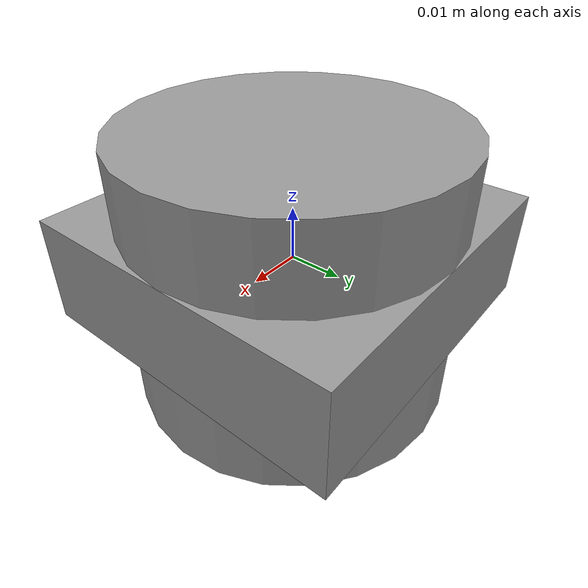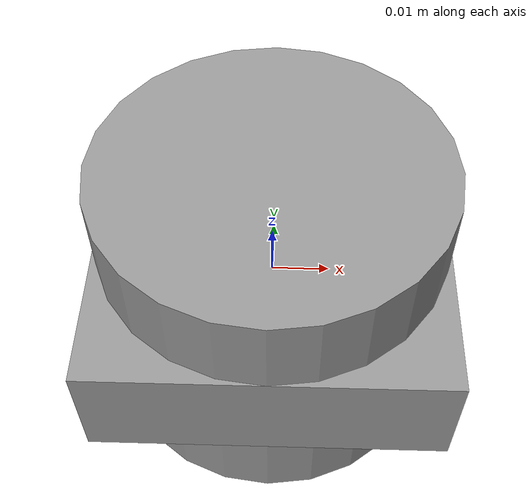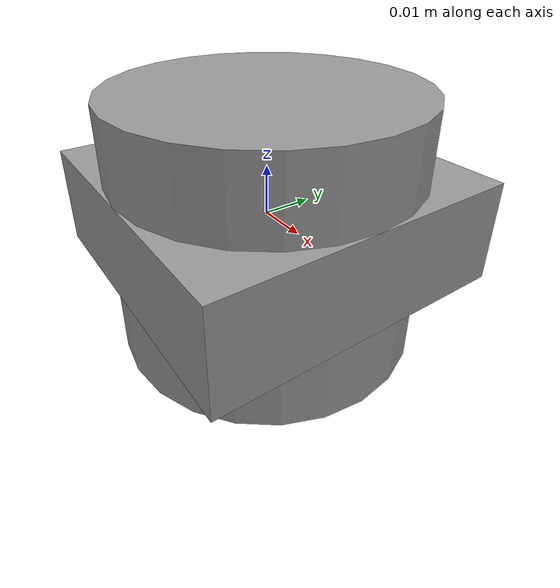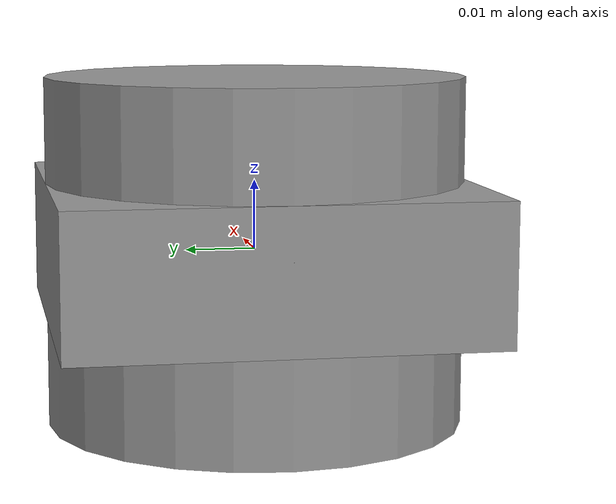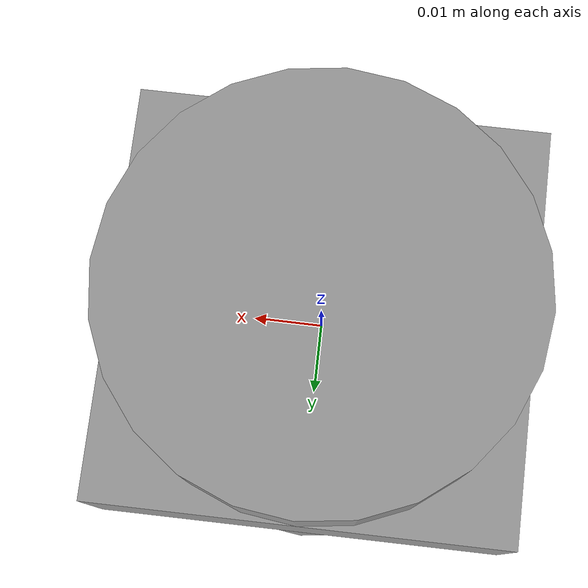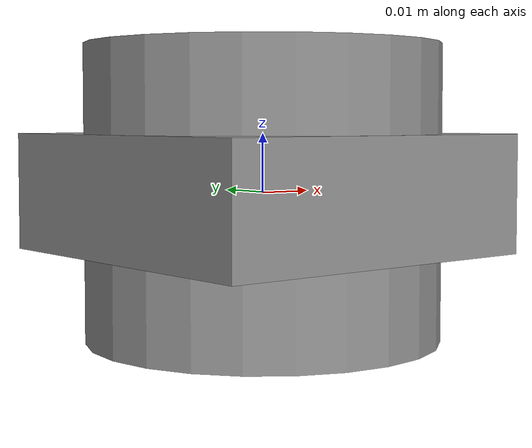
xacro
<?xml version="1.0"?>
<robot name="terrestrial_scanner" xmlns:xacro="http://www.ros.org/wiki/xacro">

  <xacro:property name="tilt_axis_xyz" value="0 0 1"/>

  <xacro:property name="tilt_lower_limit_rad" value="0.0"/>
  <xacro:property name="tilt_upper_limit_rad" value="4.18879"/> <!-- 240 deg -->

  <material name="scanner_grey">
    <color rgba="0.6 0.6 0.6 1.0"/>
  </material>

  <link name="base_link">
    <visual>
      <geometry>
        <cylinder radius="0.03" length="0.05"/>
      </geometry>
      <material name="scanner_grey"/>
    </visual>
  </link>

  <link name="tilt_link">
    <visual>
      <geometry>
        <box size="0.06 0.06 0.02"/>
      </geometry>
      <material name="scanner_grey"/>
    </visual>
  </link>

  <joint name="tilt_axis" type="revolute">
    <parent link="base_link"/>
    <child link="tilt_link"/>
    <origin xyz="0 0 0" rpy="0 0 0"/>
    <axis xyz="${tilt_axis_xyz}"/>
    <limit lower="${tilt_lower_limit_rad}" upper="${tilt_upper_limit_rad}" effort="10" velocity="5"/>
  </joint>

  <!-- velodyne link/joint intentionally not defined here — see the
       tilt_link -> velodyne note in the frames comment above. -->

</robot>
